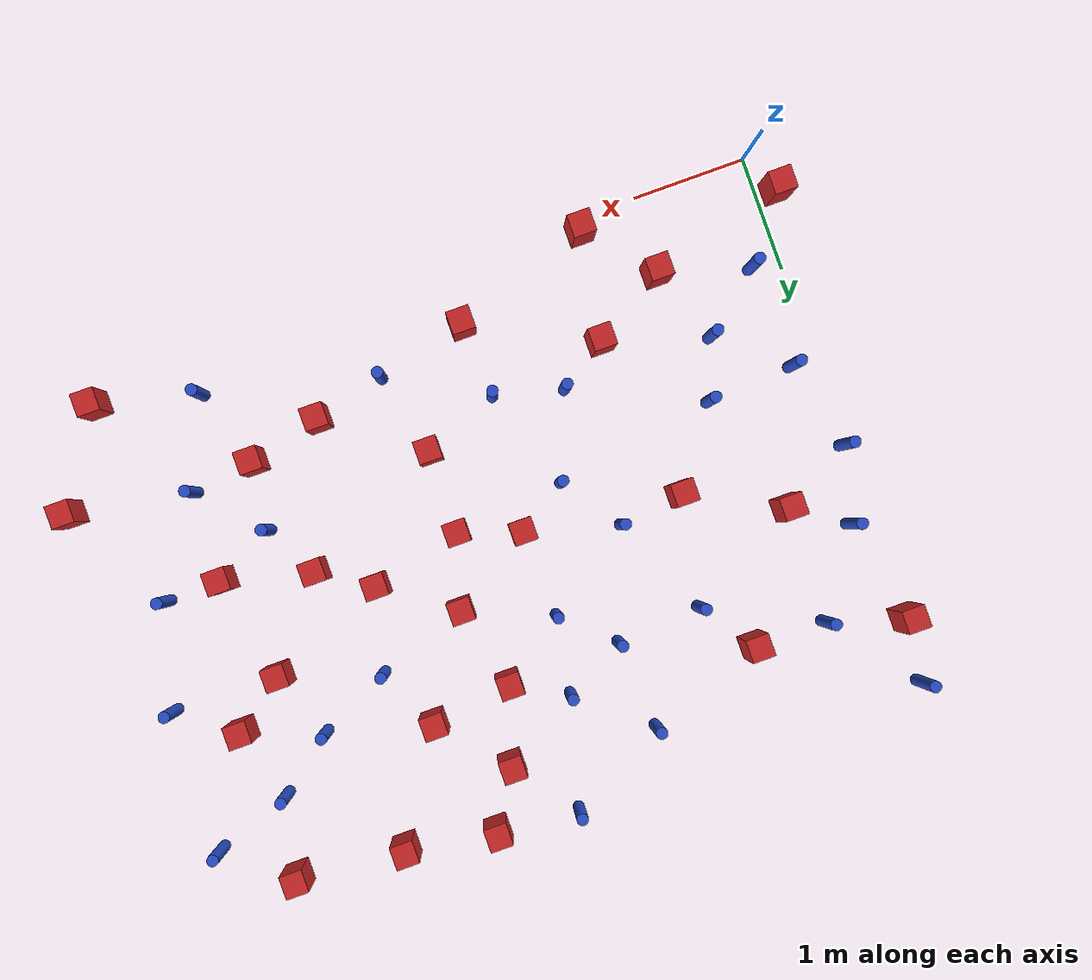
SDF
<sdf version="1.6">
 <model name="dense_68">
  <model name="pole_obstacle0">
   <static>true</static>
   <pose>2.95338815927 3.82318107499 2.88873142074e-08 -9.90536690232e-09 4.6021994898e-07 -1.20965994968e-07</pose>
   <link name="link">
    <pose>0 0 0.3 0 -0 0</pose>
    <inertial>
     <mass>1</mass>
     <inertia><ixx>0.145833</ixx><ixy>0</ixy><ixz>0</ixz><iyy>0.145833</iyy><iyz>0</iyz><izz>0.125</izz></inertia>
    </inertial>
    <collision name="collision">
     <geometry><cylinder><radius>0.05</radius><length>.6</length></cylinder></geometry>
    </collision>
    <visual name="visual">
     <geometry><cylinder><radius>0.05</radius><length>.6</length></cylinder></geometry>
     <material>
      <script><name>Gazebo/Blue</name><uri>file://media/materials/scripts/gazebo.material</uri></script>
     </material>
    </visual>
   </link>
  </model>
  <model name="square_post_obstacle6">
   <static>true</static>
   <pose>1.0574239623 0.681097987181 8.22691968438e-08 7.2212513382e-06 -7.54495500217e-07 2.29674213826e-05</pose>
   <link name="link">
    <pose>0 0 0.25 0 -0 0</pose>
    <inertial>
     <mass>100</mass>
     <inertia>
      <ixx>0.166667</ixx>
      <ixy>0</ixy>
      <ixz>0</ixz>
      <iyy>0.166667</iyy>
      <iyz>0</iyz>
      <izz>0.166667</izz>
     </inertia>
    </inertial>
    <collision name="collision"><geometry><box><size>.2 .2 .5</size></box></geometry></collision>
    <visual name="visual">
     <geometry><box><size>.2 .2 .5</size></box></geometry>
     <material>
      <script><name>Gazebo/Red</name><uri>file://media/materials/scripts/gazebo.material</uri></script>
     </material>
    </visual>
   </link>
  </model>
  <model name="square_post_obstacle7">
   <static>true</static>
   <pose>4.19814974283 2.39181814396 8.22691968438e-08 7.2212513382e-06 -7.54495500217e-07 2.29674213826e-05</pose>
   <link name="link">
    <pose>0 0 0.25 0 -0 0</pose>
    <inertial>
     <mass>100</mass>
     <inertia>
      <ixx>0.166667</ixx>
      <ixy>0</ixy>
      <ixz>0</ixz>
      <iyy>0.166667</iyy>
      <iyz>0</iyz>
      <izz>0.166667</izz>
     </inertia>
    </inertial>
    <collision name="collision"><geometry><box><size>.2 .2 .5</size></box></geometry></collision>
    <visual name="visual">
     <geometry><box><size>.2 .2 .5</size></box></geometry>
     <material>
      <script><name>Gazebo/Red</name><uri>file://media/materials/scripts/gazebo.material</uri></script>
     </material>
    </visual>
   </link>
  </model>
  <model name="pole_obstacle11">
   <static>true</static>
   <pose>3.21454982424 4.77770129587 2.88873142074e-08 -9.90536689859e-09 4.60219948989e-07 -1.20965994961e-07</pose>
   <link name="link">
    <pose>0 0 0.3 0 -0 0</pose>
    <inertial>
     <mass>1</mass>
     <inertia><ixx>0.145833</ixx><ixy>0</ixy><ixz>0</ixz><iyy>0.145833</iyy><iyz>0</iyz><izz>0.125</izz></inertia>
    </inertial>
    <collision name="collision">
     <geometry><cylinder><radius>0.05</radius><length>.6</length></cylinder></geometry>
    </collision>
    <visual name="visual">
     <geometry><cylinder><radius>0.05</radius><length>.6</length></cylinder></geometry>
     <material>
      <script><name>Gazebo/Blue</name><uri>file://media/materials/scripts/gazebo.material</uri></script>
     </material>
    </visual>
   </link>
  </model>
  <model name="square_post_obstacle8">
   <static>true</static>
   <pose>1.70375247246 1.07010474662 8.22691968438e-08 7.2212513382e-06 -7.54495500217e-07 2.29674213826e-05</pose>
   <link name="link">
    <pose>0 0 0.25 0 -0 0</pose>
    <inertial>
     <mass>100</mass>
     <inertia>
      <ixx>0.166667</ixx>
      <ixy>0</ixy>
      <ixz>0</ixz>
      <iyy>0.166667</iyy>
      <iyz>0</iyz>
      <izz>0.166667</izz>
     </inertia>
    </inertial>
    <collision name="collision"><geometry><box><size>.2 .2 .5</size></box></geometry></collision>
    <visual name="visual">
     <geometry><box><size>.2 .2 .5</size></box></geometry>
     <material>
      <script><name>Gazebo/Red</name><uri>file://media/materials/scripts/gazebo.material</uri></script>
     </material>
    </visual>
   </link>
  </model>
  <model name="pole_obstacle19">
   <static>true</static>
   <pose>2.42391757522 2.09392332959 2.88873142074e-08 -9.90536690232e-09 4.6021994898e-07 -1.20965994968e-07</pose>
   <link name="link">
    <pose>0 0 0.3 0 -0 0</pose>
    <inertial>
     <mass>1</mass>
     <inertia><ixx>0.145833</ixx><ixy>0</ixy><ixz>0</ixz><iyy>0.145833</iyy><iyz>0</iyz><izz>0.125</izz></inertia>
    </inertial>
    <collision name="collision">
     <geometry><cylinder><radius>0.05</radius><length>.6</length></cylinder></geometry>
    </collision>
    <visual name="visual">
     <geometry><cylinder><radius>0.05</radius><length>.6</length></cylinder></geometry>
     <material>
      <script><name>Gazebo/Blue</name><uri>file://media/materials/scripts/gazebo.material</uri></script>
     </material>
    </visual>
   </link>
  </model>
  <model name="pole_obstacle30">
   <static>true</static>
   <pose>2.41918449153 3.54463106303 2.88873142074e-08 -9.90536690232e-09 4.6021994898e-07 -1.20965994968e-07</pose>
   <link name="link">
    <pose>0 0 0.3 0 -0 0</pose>
    <inertial>
     <mass>1</mass>
     <inertia><ixx>0.145833</ixx><ixy>0</ixy><ixz>0</ixz><iyy>0.145833</iyy><iyz>0</iyz><izz>0.125</izz></inertia>
    </inertial>
    <collision name="collision">
     <geometry><cylinder><radius>0.05</radius><length>.6</length></cylinder></geometry>
    </collision>
    <visual name="visual">
     <geometry><cylinder><radius>0.05</radius><length>.6</length></cylinder></geometry>
     <material>
      <script><name>Gazebo/Blue</name><uri>file://media/materials/scripts/gazebo.material</uri></script>
     </material>
    </visual>
   </link>
  </model>
  <model name="pole_obstacle31">
   <static>true</static>
   <pose>2.12098977054 1.35088619284 2.88873142074e-08 -9.90536689395e-09 4.60219949e-07 -1.20965994953e-07</pose>
   <link name="link">
    <pose>0 0 0.3 0 -0 0</pose>
    <inertial>
     <mass>1</mass>
     <inertia><ixx>0.145833</ixx><ixy>0</ixy><ixz>0</ixz><iyy>0.145833</iyy><iyz>0</iyz><izz>0.125</izz></inertia>
    </inertial>
    <collision name="collision">
     <geometry><cylinder><radius>0.05</radius><length>.6</length></cylinder></geometry>
    </collision>
    <visual name="visual">
     <geometry><cylinder><radius>0.05</radius><length>.6</length></cylinder></geometry>
     <material>
      <script><name>Gazebo/Blue</name><uri>file://media/materials/scripts/gazebo.material</uri></script>
     </material>
    </visual>
   </link>
  </model>
  <model name="pole_obstacle58">
   <static>true</static>
   <pose>2.35883688281 4.3297631418 2.88873142074e-08 -9.90536689859e-09 4.60219948989e-07 -1.20965994961e-07</pose>
   <link name="link">
    <pose>0 0 0.3 0 -0 0</pose>
    <inertial>
     <mass>1</mass>
     <inertia><ixx>0.145833</ixx><ixy>0</ixy><ixz>0</ixz><iyy>0.145833</iyy><iyz>0</iyz><izz>0.125</izz></inertia>
    </inertial>
    <collision name="collision">
     <geometry><cylinder><radius>0.05</radius><length>.6</length></cylinder></geometry>
    </collision>
    <visual name="visual">
     <geometry><cylinder><radius>0.05</radius><length>.6</length></cylinder></geometry>
     <material>
      <script><name>Gazebo/Blue</name><uri>file://media/materials/scripts/gazebo.material</uri></script>
     </material>
    </visual>
   </link>
  </model>
  <model name="square_post_obstacle46">
   <static>true</static>
   <pose>1.54921073364 0.12284174151 8.22691968438e-08 7.2212513382e-06 -7.54495500217e-07 2.29674213826e-05</pose>
   <link name="link">
    <pose>0 0 0.25 0 -0 0</pose>
    <inertial>
     <mass>100</mass>
     <inertia>
      <ixx>0.166667</ixx>
      <ixy>0</ixy>
      <ixz>0</ixz>
      <iyy>0.166667</iyy>
      <iyz>0</iyz>
      <izz>0.166667</izz>
     </inertia>
    </inertial>
    <collision name="collision"><geometry><box><size>.2 .2 .5</size></box></geometry></collision>
    <visual name="visual">
     <geometry><box><size>.2 .2 .5</size></box></geometry>
     <material>
      <script><name>Gazebo/Red</name><uri>file://media/materials/scripts/gazebo.material</uri></script>
     </material>
    </visual>
   </link>
  </model>
  <model name="square_post_obstacle58">
   <static>true</static>
   <pose>4.12640777615 3.65802413421 8.22691968438e-08 7.2212513382e-06 -7.54495500217e-07 2.29674213826e-05</pose>
   <link name="link">
    <pose>0 0 0.25 0 -0 0</pose>
    <inertial>
     <mass>100</mass>
     <inertia>
      <ixx>0.166667</ixx>
      <ixy>0</ixy>
      <ixz>0</ixz>
      <iyy>0.166667</iyy>
      <iyz>0</iyz>
      <izz>0.166667</izz>
     </inertia>
    </inertial>
    <collision name="collision"><geometry><box><size>.2 .2 .5</size></box></geometry></collision>
    <visual name="visual">
     <geometry><box><size>.2 .2 .5</size></box></geometry>
     <material>
      <script><name>Gazebo/Red</name><uri>file://media/materials/scripts/gazebo.material</uri></script>
     </material>
    </visual>
   </link>
  </model>
  <model name="pole_obstacle74">
   <static>true</static>
   <pose>0.701945826271 3.97241966983 2.88873142074e-08 -9.90536689658e-09 4.60219948993e-07 -1.20965994958e-07</pose>
   <link name="link">
    <pose>0 0 0.3 0 -0 0</pose>
    <inertial>
     <mass>1</mass>
     <inertia><ixx>0.145833</ixx><ixy>0</ixy><ixz>0</ixz><iyy>0.145833</iyy><iyz>0</iyz><izz>0.125</izz></inertia>
    </inertial>
    <collision name="collision">
     <geometry><cylinder><radius>0.05</radius><length>.6</length></cylinder></geometry>
    </collision>
    <visual name="visual">
     <geometry><cylinder><radius>0.05</radius><length>.6</length></cylinder></geometry>
     <material>
      <script><name>Gazebo/Blue</name><uri>file://media/materials/scripts/gazebo.material</uri></script>
     </material>
    </visual>
   </link>
  </model>
  <model name="pole_obstacle80">
   <static>true</static>
   <pose>0.217586208194 3.25701772054 2.88873142074e-08 -9.90536692545e-09 4.60219948925e-07 -1.2096599499e-07</pose>
   <link name="link">
    <pose>0 0 0.3 0 -0 0</pose>
    <inertial>
     <mass>1</mass>
     <inertia><ixx>0.145833</ixx><ixy>0</ixy><ixz>0</ixz><iyy>0.145833</iyy><iyz>0</iyz><izz>0.125</izz></inertia>
    </inertial>
    <collision name="collision">
     <geometry><cylinder><radius>0.05</radius><length>.6</length></cylinder></geometry>
    </collision>
    <visual name="visual">
     <geometry><cylinder><radius>0.05</radius><length>.6</length></cylinder></geometry>
     <material>
      <script><name>Gazebo/Blue</name><uri>file://media/materials/scripts/gazebo.material</uri></script>
     </material>
    </visual>
   </link>
  </model>
  <model name="square_post_obstacle71">
   <static>true</static>
   <pose>4.19457487001 0.886041474974 8.22691968438e-08 7.2212513382e-06 -7.54495500217e-07 2.29674213826e-05</pose>
   <link name="link">
    <pose>0 0 0.25 0 -0 0</pose>
    <inertial>
     <mass>100</mass>
     <inertia>
      <ixx>0.166667</ixx>
      <ixy>0</ixy>
      <ixz>0</ixz>
      <iyy>0.166667</iyy>
      <iyz>0</iyz>
      <izz>0.166667</izz>
     </inertia>
    </inertial>
    <collision name="collision"><geometry><box><size>.2 .2 .5</size></box></geometry></collision>
    <visual name="visual">
     <geometry><box><size>.2 .2 .5</size></box></geometry>
     <material>
      <script><name>Gazebo/Red</name><uri>file://media/materials/scripts/gazebo.material</uri></script>
     </material>
    </visual>
   </link>
  </model>
  <model name="pole_obstacle86">
   <static>true</static>
   <pose>1.00251594025 1.86602653008 2.88873142074e-08 -9.90536689555e-09 4.60219948996e-07 -1.20965994954e-07</pose>
   <link name="link">
    <pose>0 0 0.3 0 -0 0</pose>
    <inertial>
     <mass>1</mass>
     <inertia><ixx>0.145833</ixx><ixy>0</ixy><ixz>0</ixz><iyy>0.145833</iyy><iyz>0</iyz><izz>0.125</izz></inertia>
    </inertial>
    <collision name="collision">
     <geometry><cylinder><radius>0.05</radius><length>.6</length></cylinder></geometry>
    </collision>
    <visual name="visual">
     <geometry><cylinder><radius>0.05</radius><length>.6</length></cylinder></geometry>
     <material>
      <script><name>Gazebo/Blue</name><uri>file://media/materials/scripts/gazebo.material</uri></script>
     </material>
    </visual>
   </link>
  </model>
  <model name="pole_obstacle87">
   <static>true</static>
   <pose>0.234358191978 1.81872209852 2.88873142074e-08 -9.90536690118e-09 4.60219948983e-07 -1.20965994965e-07</pose>
   <link name="link">
    <pose>0 0 0.3 0 -0 0</pose>
    <inertial>
     <mass>1</mass>
     <inertia><ixx>0.145833</ixx><ixy>0</ixy><ixz>0</ixz><iyy>0.145833</iyy><iyz>0</iyz><izz>0.125</izz></inertia>
    </inertial>
    <collision name="collision">
     <geometry><cylinder><radius>0.05</radius><length>.6</length></cylinder></geometry>
    </collision>
    <visual name="visual">
     <geometry><cylinder><radius>0.05</radius><length>.6</length></cylinder></geometry>
     <material>
      <script><name>Gazebo/Blue</name><uri>file://media/materials/scripts/gazebo.material</uri></script>
     </material>
    </visual>
   </link>
  </model>
  <model name="square_post_obstacle78">
   <static>true</static>
   <pose>5.66142510613 4.49917808692 8.22691968438e-08 7.2212513382e-06 -7.54495500217e-07 2.29674213826e-05</pose>
   <link name="link">
    <pose>0 0 0.25 0 -0 0</pose>
    <inertial>
     <mass>100</mass>
     <inertia>
      <ixx>0.166667</ixx>
      <ixy>0</ixy>
      <ixz>0</ixz>
      <iyy>0.166667</iyy>
      <iyz>0</iyz>
      <izz>0.166667</izz>
     </inertia>
    </inertial>
    <collision name="collision"><geometry><box><size>.2 .2 .5</size></box></geometry></collision>
    <visual name="visual">
     <geometry><box><size>.2 .2 .5</size></box></geometry>
     <material>
      <script><name>Gazebo/Red</name><uri>file://media/materials/scripts/gazebo.material</uri></script>
     </material>
    </visual>
   </link>
  </model>
  <model name="square_post_obstacle81">
   <static>true</static>
   <pose>0.0384166265616 4.1695598879 8.22691968438e-08 7.2212513382e-06 -7.54495500217e-07 2.29674213826e-05</pose>
   <link name="link">
    <pose>0 0 0.25 0 -0 0</pose>
    <inertial>
     <mass>100</mass>
     <inertia>
      <ixx>0.166667</ixx>
      <ixy>0</ixy>
      <ixz>0</ixz>
      <iyy>0.166667</iyy>
      <iyz>0</iyz>
      <izz>0.166667</izz>
     </inertia>
    </inertial>
    <collision name="collision"><geometry><box><size>.2 .2 .5</size></box></geometry></collision>
    <visual name="visual">
     <geometry><box><size>.2 .2 .5</size></box></geometry>
     <material>
      <script><name>Gazebo/Red</name><uri>file://media/materials/scripts/gazebo.material</uri></script>
     </material>
    </visual>
   </link>
  </model>
  <model name="square_post_obstacle85">
   <static>true</static>
   <pose>3.58765914998 2.828697927 8.22691968438e-08 7.2212513382e-06 -7.54495500217e-07 2.29674213826e-05</pose>
   <link name="link">
    <pose>0 0 0.25 0 -0 0</pose>
    <inertial>
     <mass>100</mass>
     <inertia>
      <ixx>0.166667</ixx>
      <ixy>0</ixy>
      <ixz>0</ixz>
      <iyy>0.166667</iyy>
      <iyz>0</iyz>
      <izz>0.166667</izz>
     </inertia>
    </inertial>
    <collision name="collision"><geometry><box><size>.2 .2 .5</size></box></geometry></collision>
    <visual name="visual">
     <geometry><box><size>.2 .2 .5</size></box></geometry>
     <material>
      <script><name>Gazebo/Red</name><uri>file://media/materials/scripts/gazebo.material</uri></script>
     </material>
    </visual>
   </link>
  </model>
  <model name="square_post_obstacle88">
   <static>true</static>
   <pose>3.62448370422 4.21825290989 8.22691968438e-08 7.2212513382e-06 -7.54495500217e-07 2.29674213826e-05</pose>
   <link name="link">
    <pose>0 0 0.25 0 -0 0</pose>
    <inertial>
     <mass>100</mass>
     <inertia>
      <ixx>0.166667</ixx>
      <ixy>0</ixy>
      <ixz>0</ixz>
      <iyy>0.166667</iyy>
      <iyz>0</iyz>
      <izz>0.166667</izz>
     </inertia>
    </inertial>
    <collision name="collision"><geometry><box><size>.2 .2 .5</size></box></geometry></collision>
    <visual name="visual">
     <geometry><box><size>.2 .2 .5</size></box></geometry>
     <material>
      <script><name>Gazebo/Red</name><uri>file://media/materials/scripts/gazebo.material</uri></script>
     </material>
    </visual>
   </link>
  </model>
  <model name="square_post_obstacle100">
   <static>true</static>
   <pose>6.4584873798 0.938837930503 8.22691968438e-08 7.2212513382e-06 -7.54495500217e-07 2.29674213826e-05</pose>
   <link name="link">
    <pose>0 0 0.25 0 -0 0</pose>
    <inertial>
     <mass>100</mass>
     <inertia>
      <ixx>0.166667</ixx>
      <ixy>0</ixy>
      <ixz>0</ixz>
      <iyy>0.166667</iyy>
      <iyz>0</iyz>
      <izz>0.166667</izz>
     </inertia>
    </inertial>
    <collision name="collision"><geometry><box><size>.2 .2 .5</size></box></geometry></collision>
    <visual name="visual">
     <geometry><box><size>.2 .2 .5</size></box></geometry>
     <material>
      <script><name>Gazebo/Red</name><uri>file://media/materials/scripts/gazebo.material</uri></script>
     </material>
    </visual>
   </link>
  </model>
  <model name="pole_obstacle109">
   <static>true</static>
   <pose>5.0589221295 0.348679534401 2.88873142074e-08 -9.90536689981e-09 4.60219948986e-07 -1.20965994962e-07</pose>
   <link name="link">
    <pose>0 0 0.3 0 -0 0</pose>
    <inertial>
     <mass>1</mass>
     <inertia><ixx>0.145833</ixx><ixy>0</ixy><ixz>0</ixz><iyy>0.145833</iyy><iyz>0</iyz><izz>0.125</izz></inertia>
    </inertial>
    <collision name="collision">
     <geometry><cylinder><radius>0.05</radius><length>.6</length></cylinder></geometry>
    </collision>
    <visual name="visual">
     <geometry><cylinder><radius>0.05</radius><length>.6</length></cylinder></geometry>
     <material>
      <script><name>Gazebo/Blue</name><uri>file://media/materials/scripts/gazebo.material</uri></script>
     </material>
    </visual>
   </link>
  </model>
  <model name="square_post_obstacle115">
   <static>true</static>
   <pose>3.39516028407 1.46669084562 8.22691968438e-08 7.2212513382e-06 -7.54495500217e-07 2.29674213826e-05</pose>
   <link name="link">
    <pose>0 0 0.25 0 -0 0</pose>
    <inertial>
     <mass>100</mass>
     <inertia>
      <ixx>0.166667</ixx>
      <ixy>0</ixy>
      <ixz>0</ixz>
      <iyy>0.166667</iyy>
      <iyz>0</iyz>
      <izz>0.166667</izz>
     </inertia>
    </inertial>
    <collision name="collision"><geometry><box><size>.2 .2 .5</size></box></geometry></collision>
    <visual name="visual">
     <geometry><box><size>.2 .2 .5</size></box></geometry>
     <material>
      <script><name>Gazebo/Red</name><uri>file://media/materials/scripts/gazebo.material</uri></script>
     </material>
    </visual>
   </link>
  </model>
  <model name="pole_obstacle119">
   <static>true</static>
   <pose>6.183975594 2.82008652512 2.88873142074e-08 -9.90536690245e-09 4.6021994898e-07 -1.20965994966e-07</pose>
   <link name="link">
    <pose>0 0 0.3 0 -0 0</pose>
    <inertial>
     <mass>1</mass>
     <inertia><ixx>0.145833</ixx><ixy>0</ixy><ixz>0</ixz><iyy>0.145833</iyy><iyz>0</iyz><izz>0.125</izz></inertia>
    </inertial>
    <collision name="collision">
     <geometry><cylinder><radius>0.05</radius><length>.6</length></cylinder></geometry>
    </collision>
    <visual name="visual">
     <geometry><cylinder><radius>0.05</radius><length>.6</length></cylinder></geometry>
     <material>
      <script><name>Gazebo/Blue</name><uri>file://media/materials/scripts/gazebo.material</uri></script>
     </material>
    </visual>
   </link>
  </model>
  <model name="square_post_obstacle121">
   <static>true</static>
   <pose>4.83354323299 1.04320328483 8.22691968438e-08 7.2212513382e-06 -7.54495500217e-07 2.29674213826e-05</pose>
   <link name="link">
    <pose>0 0 0.25 0 -0 0</pose>
    <inertial>
     <mass>100</mass>
     <inertia>
      <ixx>0.166667</ixx>
      <ixy>0</ixy>
      <ixz>0</ixz>
      <iyy>0.166667</iyy>
      <iyz>0</iyz>
      <izz>0.166667</izz>
     </inertia>
    </inertial>
    <collision name="collision"><geometry><box><size>.2 .2 .5</size></box></geometry></collision>
    <visual name="visual">
     <geometry><box><size>.2 .2 .5</size></box></geometry>
     <material>
      <script><name>Gazebo/Red</name><uri>file://media/materials/scripts/gazebo.material</uri></script>
     </material>
    </visual>
   </link>
  </model>
  <model name="square_post_obstacle126">
   <static>true</static>
   <pose>3.4026030802 2.19939433829 8.22691968438e-08 7.2212513382e-06 -7.54495500217e-07 2.29674213826e-05</pose>
   <link name="link">
    <pose>0 0 0.25 0 -0 0</pose>
    <inertial>
     <mass>100</mass>
     <inertia>
      <ixx>0.166667</ixx>
      <ixy>0</ixy>
      <ixz>0</ixz>
      <iyy>0.166667</iyy>
      <iyz>0</iyz>
      <izz>0.166667</izz>
     </inertia>
    </inertial>
    <collision name="collision"><geometry><box><size>.2 .2 .5</size></box></geometry></collision>
    <visual name="visual">
     <geometry><box><size>.2 .2 .5</size></box></geometry>
     <material>
      <script><name>Gazebo/Red</name><uri>file://media/materials/scripts/gazebo.material</uri></script>
     </material>
    </visual>
   </link>
  </model>
  <model name="pole_obstacle139">
   <static>true</static>
   <pose>1.66911154547 3.49284591557 2.88873142074e-08 -9.90536689791e-09 4.6021994899e-07 -1.20965994959e-07</pose>
   <link name="link">
    <pose>0 0 0.3 0 -0 0</pose>
    <inertial>
     <mass>1</mass>
     <inertia><ixx>0.145833</ixx><ixy>0</ixy><ixz>0</ixz><iyy>0.145833</iyy><iyz>0</iyz><izz>0.125</izz></inertia>
    </inertial>
    <collision name="collision">
     <geometry><cylinder><radius>0.05</radius><length>.6</length></cylinder></geometry>
    </collision>
    <visual name="visual">
     <geometry><cylinder><radius>0.05</radius><length>.6</length></cylinder></geometry>
     <material>
      <script><name>Gazebo/Blue</name><uri>file://media/materials/scripts/gazebo.material</uri></script>
     </material>
    </visual>
   </link>
  </model>
  <model name="pole_obstacle144">
   <static>true</static>
   <pose>5.92496279942 1.91511772824 2.88873142074e-08 -9.90536689445e-09 4.60219948999e-07 -1.20965994956e-07</pose>
   <link name="link">
    <pose>0 0 0.3 0 -0 0</pose>
    <inertial>
     <mass>1</mass>
     <inertia><ixx>0.145833</ixx><ixy>0</ixy><ixz>0</ixz><iyy>0.145833</iyy><iyz>0</iyz><izz>0.125</izz></inertia>
    </inertial>
    <collision name="collision">
     <geometry><cylinder><radius>0.05</radius><length>.6</length></cylinder></geometry>
    </collision>
    <visual name="visual">
     <geometry><cylinder><radius>0.05</radius><length>.6</length></cylinder></geometry>
     <material>
      <script><name>Gazebo/Blue</name><uri>file://media/materials/scripts/gazebo.material</uri></script>
     </material>
    </visual>
   </link>
  </model>
  <model name="square_post_obstacle145">
   <static>true</static>
   <pose>0.681151888326 2.94164645576 8.22691968438e-08 7.2212513382e-06 -7.54495500217e-07 2.29674213826e-05</pose>
   <link name="link">
    <pose>0 0 0.25 0 -0 0</pose>
    <inertial>
     <mass>100</mass>
     <inertia>
      <ixx>0.166667</ixx>
      <ixy>0</ixy>
      <ixz>0</ixz>
      <iyy>0.166667</iyy>
      <iyz>0</iyz>
      <izz>0.166667</izz>
     </inertia>
    </inertial>
    <collision name="collision"><geometry><box><size>.2 .2 .5</size></box></geometry></collision>
    <visual name="visual">
     <geometry><box><size>.2 .2 .5</size></box></geometry>
     <material>
      <script><name>Gazebo/Red</name><uri>file://media/materials/scripts/gazebo.material</uri></script>
     </material>
    </visual>
   </link>
  </model>
  <model name="square_post_obstacle146">
   <static>true</static>
   <pose>5.68999195986 3.17300451024 8.22691968438e-08 7.2212513382e-06 -7.54495500217e-07 2.29674213826e-05</pose>
   <link name="link">
    <pose>0 0 0.25 0 -0 0</pose>
    <inertial>
     <mass>100</mass>
     <inertia>
      <ixx>0.166667</ixx>
      <ixy>0</ixy>
      <ixz>0</ixz>
      <iyy>0.166667</iyy>
      <iyz>0</iyz>
      <izz>0.166667</izz>
     </inertia>
    </inertial>
    <collision name="collision"><geometry><box><size>.2 .2 .5</size></box></geometry></collision>
    <visual name="visual">
     <geometry><box><size>.2 .2 .5</size></box></geometry>
     <material>
      <script><name>Gazebo/Red</name><uri>file://media/materials/scripts/gazebo.material</uri></script>
     </material>
    </visual>
   </link>
  </model>
  <model name="square_post_obstacle148">
   <static>true</static>
   <pose>4.71321855465 4.58082167897 8.22691968438e-08 7.2212513382e-06 -7.54495500217e-07 2.29674213826e-05</pose>
   <link name="link">
    <pose>0 0 0.25 0 -0 0</pose>
    <inertial>
     <mass>100</mass>
     <inertia>
      <ixx>0.166667</ixx>
      <ixy>0</ixy>
      <ixz>0</ixz>
      <iyy>0.166667</iyy>
      <iyz>0</iyz>
      <izz>0.166667</izz>
     </inertia>
    </inertial>
    <collision name="collision"><geometry><box><size>.2 .2 .5</size></box></geometry></collision>
    <visual name="visual">
     <geometry><box><size>.2 .2 .5</size></box></geometry>
     <material>
      <script><name>Gazebo/Red</name><uri>file://media/materials/scripts/gazebo.material</uri></script>
     </material>
    </visual>
   </link>
  </model>
  <model name="pole_obstacle160">
   <static>true</static>
   <pose>5.39366125509 1.11874961538 2.88873142074e-08 -9.90536689445e-09 4.60219948999e-07 -1.20965994956e-07</pose>
   <link name="link">
    <pose>0 0 0.3 0 -0 0</pose>
    <inertial>
     <mass>1</mass>
     <inertia><ixx>0.145833</ixx><ixy>0</ixy><ixz>0</ixz><iyy>0.145833</iyy><iyz>0</iyz><izz>0.125</izz></inertia>
    </inertial>
    <collision name="collision">
     <geometry><cylinder><radius>0.05</radius><length>.6</length></cylinder></geometry>
    </collision>
    <visual name="visual">
     <geometry><cylinder><radius>0.05</radius><length>.6</length></cylinder></geometry>
     <material>
      <script><name>Gazebo/Blue</name><uri>file://media/materials/scripts/gazebo.material</uri></script>
     </material>
    </visual>
   </link>
  </model>
  <model name="pole_obstacle161">
   <static>true</static>
   <pose>0.275233471411 0.911219702116 2.88873142074e-08 -9.9053669005e-09 4.60219948984e-07 -1.20965994964e-07</pose>
   <link name="link">
    <pose>0 0 0.3 0 -0 0</pose>
    <inertial>
     <mass>1</mass>
     <inertia><ixx>0.145833</ixx><ixy>0</ixy><ixz>0</ixz><iyy>0.145833</iyy><iyz>0</iyz><izz>0.125</izz></inertia>
    </inertial>
    <collision name="collision">
     <geometry><cylinder><radius>0.05</radius><length>.6</length></cylinder></geometry>
    </collision>
    <visual name="visual">
     <geometry><cylinder><radius>0.05</radius><length>.6</length></cylinder></geometry>
     <material>
      <script><name>Gazebo/Blue</name><uri>file://media/materials/scripts/gazebo.material</uri></script>
     </material>
    </visual>
   </link>
  </model>
  <model name="pole_obstacle165">
   <static>true</static>
   <pose>5.51799572727 3.81327791024 2.88873142074e-08 -9.90536690245e-09 4.6021994898e-07 -1.20965994966e-07</pose>
   <link name="link">
    <pose>0 0 0.3 0 -0 0</pose>
    <inertial>
     <mass>1</mass>
     <inertia><ixx>0.145833</ixx><ixy>0</ixy><ixz>0</ixz><iyy>0.145833</iyy><iyz>0</iyz><izz>0.125</izz></inertia>
    </inertial>
    <collision name="collision">
     <geometry><cylinder><radius>0.05</radius><length>.6</length></cylinder></geometry>
    </collision>
    <visual name="visual">
     <geometry><cylinder><radius>0.05</radius><length>.6</length></cylinder></geometry>
     <material>
      <script><name>Gazebo/Blue</name><uri>file://media/materials/scripts/gazebo.material</uri></script>
     </material>
    </visual>
   </link>
  </model>
  <model name="square_post_obstacle164">
   <static>true</static>
   <pose>3.41084250722 3.55559821309 8.22691968438e-08 7.2212513382e-06 -7.54495500217e-07 2.29674213826e-05</pose>
   <link name="link">
    <pose>0 0 0.25 0 -0 0</pose>
    <inertial>
     <mass>100</mass>
     <inertia>
      <ixx>0.166667</ixx>
      <ixy>0</ixy>
      <ixz>0</ixz>
      <iyy>0.166667</iyy>
      <iyz>0</iyz>
      <izz>0.166667</izz>
     </inertia>
    </inertial>
    <collision name="collision"><geometry><box><size>.2 .2 .5</size></box></geometry></collision>
    <visual name="visual">
     <geometry><box><size>.2 .2 .5</size></box></geometry>
     <material>
      <script><name>Gazebo/Red</name><uri>file://media/materials/scripts/gazebo.material</uri></script>
     </material>
    </visual>
   </link>
  </model>
  <model name="pole_obstacle167">
   <static>true</static>
   <pose>5.02389496243 3.42561896942 2.88873142074e-08 -9.90536690245e-09 4.6021994898e-07 -1.20965994966e-07</pose>
   <link name="link">
    <pose>0 0 0.3 0 -0 0</pose>
    <inertial>
     <mass>1</mass>
     <inertia><ixx>0.145833</ixx><ixy>0</ixy><ixz>0</ixz><iyy>0.145833</iyy><iyz>0</iyz><izz>0.125</izz></inertia>
    </inertial>
    <collision name="collision">
     <geometry><cylinder><radius>0.05</radius><length>.6</length></cylinder></geometry>
    </collision>
    <visual name="visual">
     <geometry><cylinder><radius>0.05</radius><length>.6</length></cylinder></geometry>
     <material>
      <script><name>Gazebo/Blue</name><uri>file://media/materials/scripts/gazebo.material</uri></script>
     </material>
    </visual>
   </link>
  </model>
  <model name="square_post_obstacle165">
   <static>true</static>
   <pose>1.34065891119 3.95821266245 8.22691968438e-08 7.2212513382e-06 -7.54495500217e-07 2.29674213826e-05</pose>
   <link name="link">
    <pose>0 0 0.25 0 -0 0</pose>
    <inertial>
     <mass>100</mass>
     <inertia>
      <ixx>0.166667</ixx>
      <ixy>0</ixy>
      <ixz>0</ixz>
      <iyy>0.166667</iyy>
      <iyz>0</iyz>
      <izz>0.166667</izz>
     </inertia>
    </inertial>
    <collision name="collision"><geometry><box><size>.2 .2 .5</size></box></geometry></collision>
    <visual name="visual">
     <geometry><box><size>.2 .2 .5</size></box></geometry>
     <material>
      <script><name>Gazebo/Red</name><uri>file://media/materials/scripts/gazebo.material</uri></script>
     </material>
    </visual>
   </link>
  </model>
  <model name="square_post_obstacle169">
   <static>true</static>
   <pose>-0.148886523713 0.348449462047 8.22691968438e-08 7.2212513382e-06 -7.54495500217e-07 2.29674213826e-05</pose>
   <link name="link">
    <pose>0 0 0.25 0 -0 0</pose>
    <inertial>
     <mass>100</mass>
     <inertia>
      <ixx>0.166667</ixx>
      <ixy>0</ixy>
      <ixz>0</ixz>
      <iyy>0.166667</iyy>
      <iyz>0</iyz>
      <izz>0.166667</izz>
     </inertia>
    </inertial>
    <collision name="collision"><geometry><box><size>.2 .2 .5</size></box></geometry></collision>
    <visual name="visual">
     <geometry><box><size>.2 .2 .5</size></box></geometry>
     <material>
      <script><name>Gazebo/Red</name><uri>file://media/materials/scripts/gazebo.material</uri></script>
     </material>
    </visual>
   </link>
  </model>
  <model name="square_post_obstacle170">
   <static>true</static>
   <pose>1.49396436364 2.52564654548 8.22691968438e-08 7.2212513382e-06 -7.54495500217e-07 2.29674213826e-05</pose>
   <link name="link">
    <pose>0 0 0.25 0 -0 0</pose>
    <inertial>
     <mass>100</mass>
     <inertia>
      <ixx>0.166667</ixx>
      <ixy>0</ixy>
      <ixz>0</ixz>
      <iyy>0.166667</iyy>
      <iyz>0</iyz>
      <izz>0.166667</izz>
     </inertia>
    </inertial>
    <collision name="collision"><geometry><box><size>.2 .2 .5</size></box></geometry></collision>
    <visual name="visual">
     <geometry><box><size>.2 .2 .5</size></box></geometry>
     <material>
      <script><name>Gazebo/Red</name><uri>file://media/materials/scripts/gazebo.material</uri></script>
     </material>
    </visual>
   </link>
  </model>
  <model name="pole_obstacle170">
   <static>true</static>
   <pose>4.39130514524 3.11764836191 2.88873142074e-08 -9.90536690245e-09 4.6021994898e-07 -1.20965994966e-07</pose>
   <link name="link">
    <pose>0 0 0.3 0 -0 0</pose>
    <inertial>
     <mass>1</mass>
     <inertia><ixx>0.145833</ixx><ixy>0</ixy><ixz>0</ixz><iyy>0.145833</iyy><iyz>0</iyz><izz>0.125</izz></inertia>
    </inertial>
    <collision name="collision">
     <geometry><cylinder><radius>0.05</radius><length>.6</length></cylinder></geometry>
    </collision>
    <visual name="visual">
     <geometry><cylinder><radius>0.05</radius><length>.6</length></cylinder></geometry>
     <material>
      <script><name>Gazebo/Blue</name><uri>file://media/materials/scripts/gazebo.material</uri></script>
     </material>
    </visual>
   </link>
  </model>
  <model name="pole_obstacle172">
   <static>true</static>
   <pose>6.20333316736 4.06715851524 2.88873142074e-08 -9.90536690842e-09 4.60219948965e-07 -1.20965994976e-07</pose>
   <link name="link">
    <pose>0 0 0.3 0 -0 0</pose>
    <inertial>
     <mass>1</mass>
     <inertia><ixx>0.145833</ixx><ixy>0</ixy><ixz>0</ixz><iyy>0.145833</iyy><iyz>0</iyz><izz>0.125</izz></inertia>
    </inertial>
    <collision name="collision">
     <geometry><cylinder><radius>0.05</radius><length>.6</length></cylinder></geometry>
    </collision>
    <visual name="visual">
     <geometry><cylinder><radius>0.05</radius><length>.6</length></cylinder></geometry>
     <material>
      <script><name>Gazebo/Blue</name><uri>file://media/materials/scripts/gazebo.material</uri></script>
     </material>
    </visual>
   </link>
  </model>
  <model name="pole_obstacle174">
   <static>true</static>
   <pose>2.05839322315 2.60464863328 2.88873142074e-08 -9.90536690232e-09 4.6021994898e-07 -1.20965994968e-07</pose>
   <link name="link">
    <pose>0 0 0.3 0 -0 0</pose>
    <inertial>
     <mass>1</mass>
     <inertia><ixx>0.145833</ixx><ixy>0</ixy><ixz>0</ixz><iyy>0.145833</iyy><iyz>0</iyz><izz>0.125</izz></inertia>
    </inertial>
    <collision name="collision">
     <geometry><cylinder><radius>0.05</radius><length>.6</length></cylinder></geometry>
    </collision>
    <visual name="visual">
     <geometry><cylinder><radius>0.05</radius><length>.6</length></cylinder></geometry>
     <material>
      <script><name>Gazebo/Blue</name><uri>file://media/materials/scripts/gazebo.material</uri></script>
     </material>
    </visual>
   </link>
  </model>
  <model name="square_post_obstacle177">
   <static>true</static>
   <pose>2.76982050221 0.541794723367 8.22691968438e-08 7.2212513382e-06 -7.54495500217e-07 2.29674213826e-05</pose>
   <link name="link">
    <pose>0 0 0.25 0 -0 0</pose>
    <inertial>
     <mass>100</mass>
     <inertia>
      <ixx>0.166667</ixx>
      <ixy>0</ixy>
      <ixz>0</ixz>
      <iyy>0.166667</iyy>
      <iyz>0</iyz>
      <izz>0.166667</izz>
     </inertia>
    </inertial>
    <collision name="collision"><geometry><box><size>.2 .2 .5</size></box></geometry></collision>
    <visual name="visual">
     <geometry><box><size>.2 .2 .5</size></box></geometry>
     <material>
      <script><name>Gazebo/Red</name><uri>file://media/materials/scripts/gazebo.material</uri></script>
     </material>
    </visual>
   </link>
  </model>
  <model name="pole_obstacle183">
   <static>true</static>
   <pose>0.799719730332 1.35029663378 2.88873142074e-08 -9.90536689855e-09 4.60219948989e-07 -1.20965994962e-07</pose>
   <link name="link">
    <pose>0 0 0.3 0 -0 0</pose>
    <inertial>
     <mass>1</mass>
     <inertia><ixx>0.145833</ixx><ixy>0</ixy><ixz>0</ixz><iyy>0.145833</iyy><iyz>0</iyz><izz>0.125</izz></inertia>
    </inertial>
    <collision name="collision">
     <geometry><cylinder><radius>0.05</radius><length>.6</length></cylinder></geometry>
    </collision>
    <visual name="visual">
     <geometry><cylinder><radius>0.05</radius><length>.6</length></cylinder></geometry>
     <material>
      <script><name>Gazebo/Blue</name><uri>file://media/materials/scripts/gazebo.material</uri></script>
     </material>
    </visual>
   </link>
  </model>
  <model name="square_post_obstacle188">
   <static>true</static>
   <pose>4.646985178 2.10201218294 8.22691968438e-08 7.2212513382e-06 -7.54495500217e-07 2.29674213826e-05</pose>
   <link name="link">
    <pose>0 0 0.25 0 -0 0</pose>
    <inertial>
     <mass>100</mass>
     <inertia>
      <ixx>0.166667</ixx>
      <ixy>0</ixy>
      <ixz>0</ixz>
      <iyy>0.166667</iyy>
      <iyz>0</iyz>
      <izz>0.166667</izz>
     </inertia>
    </inertial>
    <collision name="collision"><geometry><box><size>.2 .2 .5</size></box></geometry></collision>
    <visual name="visual">
     <geometry><box><size>.2 .2 .5</size></box></geometry>
     <material>
      <script><name>Gazebo/Red</name><uri>file://media/materials/scripts/gazebo.material</uri></script>
     </material>
    </visual>
   </link>
  </model>
  <model name="square_post_obstacle199">
   <static>true</static>
   <pose>3.92727232821 4.70599635257 8.22691968438e-08 7.2212513382e-06 -7.54495500217e-07 2.29674213826e-05</pose>
   <link name="link">
    <pose>0 0 0.25 0 -0 0</pose>
    <inertial>
     <mass>100</mass>
     <inertia>
      <ixx>0.166667</ixx>
      <ixy>0</ixy>
      <ixz>0</ixz>
      <iyy>0.166667</iyy>
      <iyz>0</iyz>
      <izz>0.166667</izz>
     </inertia>
    </inertial>
    <collision name="collision"><geometry><box><size>.2 .2 .5</size></box></geometry></collision>
    <visual name="visual">
     <geometry><box><size>.2 .2 .5</size></box></geometry>
     <material>
      <script><name>Gazebo/Red</name><uri>file://media/materials/scripts/gazebo.material</uri></script>
     </material>
    </visual>
   </link>
  </model>
  <model name="square_post_obstacle204">
   <static>true</static>
   <pose>5.23704843714 2.8291227421 8.22691968438e-08 7.2212513382e-06 -7.54495500217e-07 2.29674213826e-05</pose>
   <link name="link">
    <pose>0 0 0.25 0 -0 0</pose>
    <inertial>
     <mass>100</mass>
     <inertia>
      <ixx>0.166667</ixx>
      <ixy>0</ixy>
      <ixz>0</ixz>
      <iyy>0.166667</iyy>
      <iyz>0</iyz>
      <izz>0.166667</izz>
     </inertia>
    </inertial>
    <collision name="collision"><geometry><box><size>.2 .2 .5</size></box></geometry></collision>
    <visual name="visual">
     <geometry><box><size>.2 .2 .5</size></box></geometry>
     <material>
      <script><name>Gazebo/Red</name><uri>file://media/materials/scripts/gazebo.material</uri></script>
     </material>
    </visual>
   </link>
  </model>
  <model name="square_post_obstacle206">
   <static>true</static>
   <pose>5.94420899976 0.130853047506 8.22691968438e-08 7.2212513382e-06 -7.54495500217e-07 2.29674213826e-05</pose>
   <link name="link">
    <pose>0 0 0.25 0 -0 0</pose>
    <inertial>
     <mass>100</mass>
     <inertia>
      <ixx>0.166667</ixx>
      <ixy>0</ixy>
      <ixz>0</ixz>
      <iyy>0.166667</iyy>
      <iyz>0</iyz>
      <izz>0.166667</izz>
     </inertia>
    </inertial>
    <collision name="collision"><geometry><box><size>.2 .2 .5</size></box></geometry></collision>
    <visual name="visual">
     <geometry><box><size>.2 .2 .5</size></box></geometry>
     <material>
      <script><name>Gazebo/Red</name><uri>file://media/materials/scripts/gazebo.material</uri></script>
     </material>
    </visual>
   </link>
  </model>
  <model name="square_post_obstacle208">
   <static>true</static>
   <pose>5.42402946361 1.90537135167 8.22691968438e-08 7.2212513382e-06 -7.54495500217e-07 2.29674213826e-05</pose>
   <link name="link">
    <pose>0 0 0.25 0 -0 0</pose>
    <inertial>
     <mass>100</mass>
     <inertia>
      <ixx>0.166667</ixx>
      <ixy>0</ixy>
      <ixz>0</ixz>
      <iyy>0.166667</iyy>
      <iyz>0</iyz>
      <izz>0.166667</izz>
     </inertia>
    </inertial>
    <collision name="collision"><geometry><box><size>.2 .2 .5</size></box></geometry></collision>
    <visual name="visual">
     <geometry><box><size>.2 .2 .5</size></box></geometry>
     <material>
      <script><name>Gazebo/Red</name><uri>file://media/materials/scripts/gazebo.material</uri></script>
     </material>
    </visual>
   </link>
  </model>
  <model name="pole_obstacle195">
   <static>true</static>
   <pose>3.5666985051 0.731738275857 2.88873142074e-08 -9.90536689285e-09 4.60219949002e-07 -1.20965994953e-07</pose>
   <link name="link">
    <pose>0 0 0.3 0 -0 0</pose>
    <inertial>
     <mass>1</mass>
     <inertia><ixx>0.145833</ixx><ixy>0</ixy><ixz>0</ixz><iyy>0.145833</iyy><iyz>0</iyz><izz>0.125</izz></inertia>
    </inertial>
    <collision name="collision">
     <geometry><cylinder><radius>0.05</radius><length>.6</length></cylinder></geometry>
    </collision>
    <visual name="visual">
     <geometry><cylinder><radius>0.05</radius><length>.6</length></cylinder></geometry>
     <material>
      <script><name>Gazebo/Blue</name><uri>file://media/materials/scripts/gazebo.material</uri></script>
     </material>
    </visual>
   </link>
  </model>
  <model name="pole_obstacle198">
   <static>true</static>
   <pose>0.103311704769 4.72965145975 2.88873142074e-08 -9.90536689742e-09 4.60219948992e-07 -1.2096599496e-07</pose>
   <link name="link">
    <pose>0 0 0.3 0 -0 0</pose>
    <inertial>
     <mass>1</mass>
     <inertia><ixx>0.145833</ixx><ixy>0</ixy><ixz>0</ixz><iyy>0.145833</iyy><iyz>0</iyz><izz>0.125</izz></inertia>
    </inertial>
    <collision name="collision">
     <geometry><cylinder><radius>0.05</radius><length>.6</length></cylinder></geometry>
    </collision>
    <visual name="visual">
     <geometry><cylinder><radius>0.05</radius><length>.6</length></cylinder></geometry>
     <material>
      <script><name>Gazebo/Blue</name><uri>file://media/materials/scripts/gazebo.material</uri></script>
     </material>
    </visual>
   </link>
  </model>
  <model name="pole_obstacle207">
   <static>true</static>
   <pose>0.0464620259601 2.60246628661 2.88873142074e-08 -9.9053669241e-09 4.60219948928e-07 -1.20965994988e-07</pose>
   <link name="link">
    <pose>0 0 0.3 0 -0 0</pose>
    <inertial>
     <mass>1</mass>
     <inertia><ixx>0.145833</ixx><ixy>0</ixy><ixz>0</ixz><iyy>0.145833</iyy><iyz>0</iyz><izz>0.125</izz></inertia>
    </inertial>
    <collision name="collision">
     <geometry><cylinder><radius>0.05</radius><length>.6</length></cylinder></geometry>
    </collision>
    <visual name="visual">
     <geometry><cylinder><radius>0.05</radius><length>.6</length></cylinder></geometry>
     <material>
      <script><name>Gazebo/Blue</name><uri>file://media/materials/scripts/gazebo.material</uri></script>
     </material>
    </visual>
   </link>
  </model>
  <model name="square_post_obstacle221">
   <static>true</static>
   <pose>2.87266371031 2.37544960806 8.22691968438e-08 7.2212513382e-06 -7.54495500217e-07 2.29674213826e-05</pose>
   <link name="link">
    <pose>0 0 0.25 0 -0 0</pose>
    <inertial>
     <mass>100</mass>
     <inertia>
      <ixx>0.166667</ixx>
      <ixy>0</ixy>
      <ixz>0</ixz>
      <iyy>0.166667</iyy>
      <iyz>0</iyz>
      <izz>0.166667</izz>
     </inertia>
    </inertial>
    <collision name="collision"><geometry><box><size>.2 .2 .5</size></box></geometry></collision>
    <visual name="visual">
     <geometry><box><size>.2 .2 .5</size></box></geometry>
     <material>
      <script><name>Gazebo/Red</name><uri>file://media/materials/scripts/gazebo.material</uri></script>
     </material>
    </visual>
   </link>
  </model>
  <model name="pole_obstacle212">
   <static>true</static>
   <pose>4.90831000913 1.63302002041 2.88873142074e-08 -9.90536689408e-09 4.60219948999e-07 -1.20965994956e-07</pose>
   <link name="link">
    <pose>0 0 0.3 0 -0 0</pose>
    <inertial>
     <mass>1</mass>
     <inertia><ixx>0.145833</ixx><ixy>0</ixy><ixz>0</ixz><iyy>0.145833</iyy><iyz>0</iyz><izz>0.125</izz></inertia>
    </inertial>
    <collision name="collision">
     <geometry><cylinder><radius>0.05</radius><length>.6</length></cylinder></geometry>
    </collision>
    <visual name="visual">
     <geometry><cylinder><radius>0.05</radius><length>.6</length></cylinder></geometry>
     <material>
      <script><name>Gazebo/Blue</name><uri>file://media/materials/scripts/gazebo.material</uri></script>
     </material>
    </visual>
   </link>
  </model>
  <model name="pole_obstacle214">
   <static>true</static>
   <pose>2.84095000913 3.14693002041 2.88873142074e-08 -9.90536692158e-09 4.60219948934e-07 -1.20965994986e-07</pose>
   <link name="link">
    <pose>0 0 0.3 0 -0 0</pose>
    <inertial>
     <mass>1</mass>
     <inertia><ixx>0.145833</ixx><ixy>0</ixy><ixz>0</ixz><iyy>0.145833</iyy><iyz>0</iyz><izz>0.125</izz></inertia>
    </inertial>
    <collision name="collision">
     <geometry><cylinder><radius>0.05</radius><length>.6</length></cylinder></geometry>
    </collision>
    <visual name="visual">
     <geometry><cylinder><radius>0.05</radius><length>.6</length></cylinder></geometry>
     <material>
      <script><name>Gazebo/Blue</name><uri>file://media/materials/scripts/gazebo.material</uri></script>
     </material>
    </visual>
   </link>
  </model>
  <model name="pole_obstacle218">
   <static>true</static>
   <pose>2.72427000913 1.19873002041 2.88873142074e-08 -9.90536691151e-09 4.60219948958e-07 -1.20965994982e-07</pose>
   <link name="link">
    <pose>0 0 0.3 0 -0 0</pose>
    <inertial>
     <mass>1</mass>
     <inertia><ixx>0.145833</ixx><ixy>0</ixy><ixz>0</ixz><iyy>0.145833</iyy><iyz>0</iyz><izz>0.125</izz></inertia>
    </inertial>
    <collision name="collision">
     <geometry><cylinder><radius>0.05</radius><length>.6</length></cylinder></geometry>
    </collision>
    <visual name="visual">
     <geometry><cylinder><radius>0.05</radius><length>.6</length></cylinder></geometry>
     <material>
      <script><name>Gazebo/Blue</name><uri>file://media/materials/scripts/gazebo.material</uri></script>
     </material>
    </visual>
   </link>
  </model>
 </model>
</sdf>
